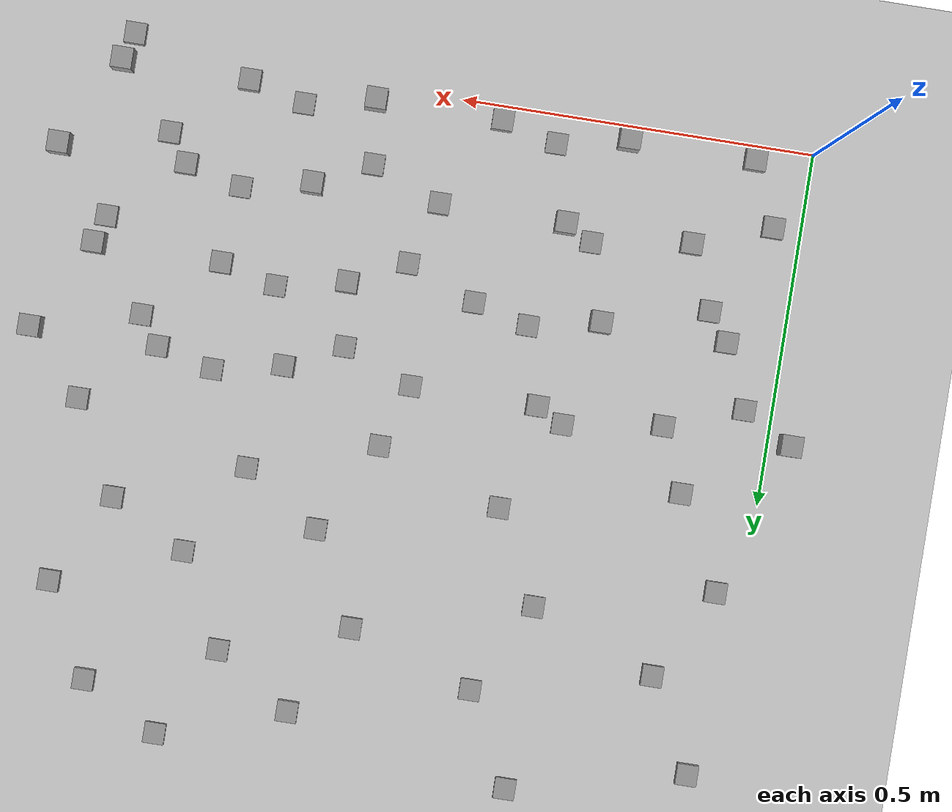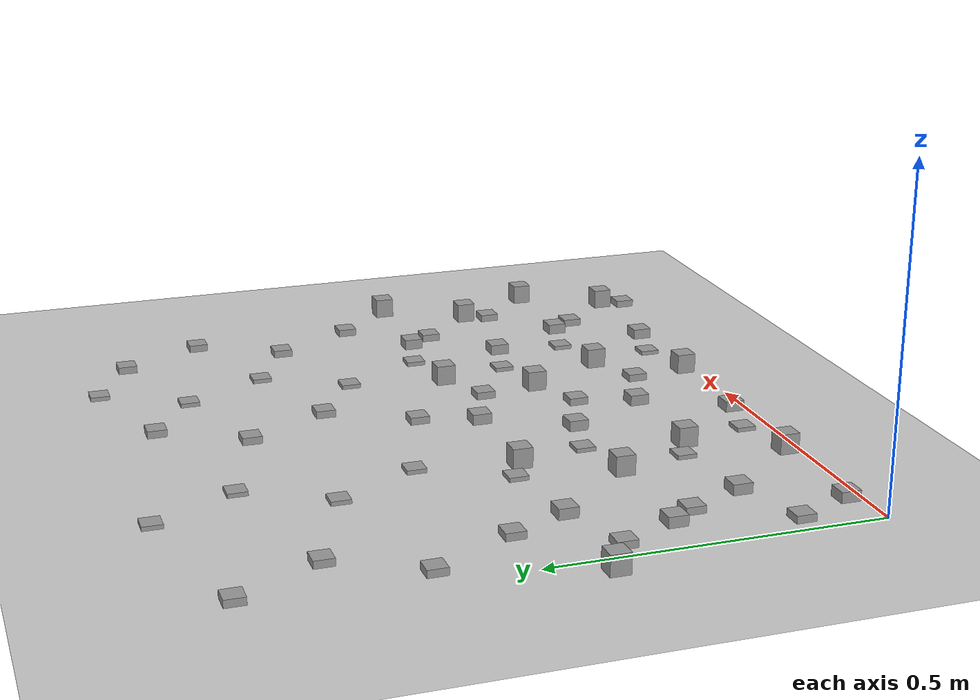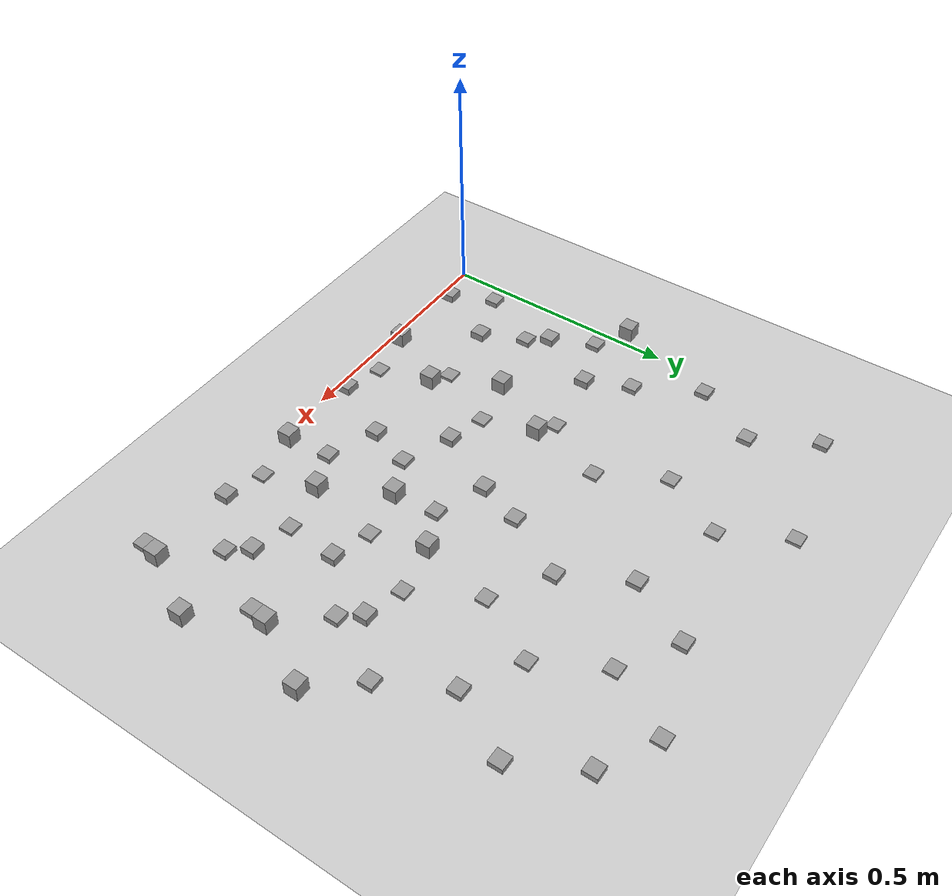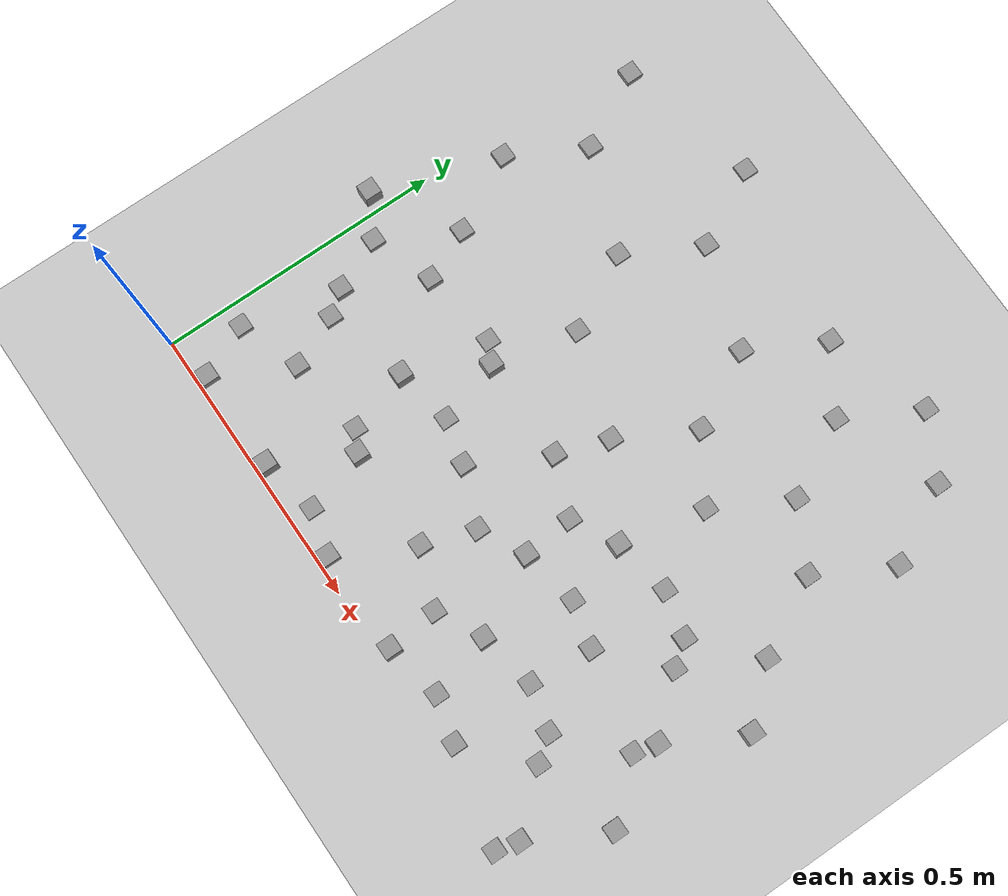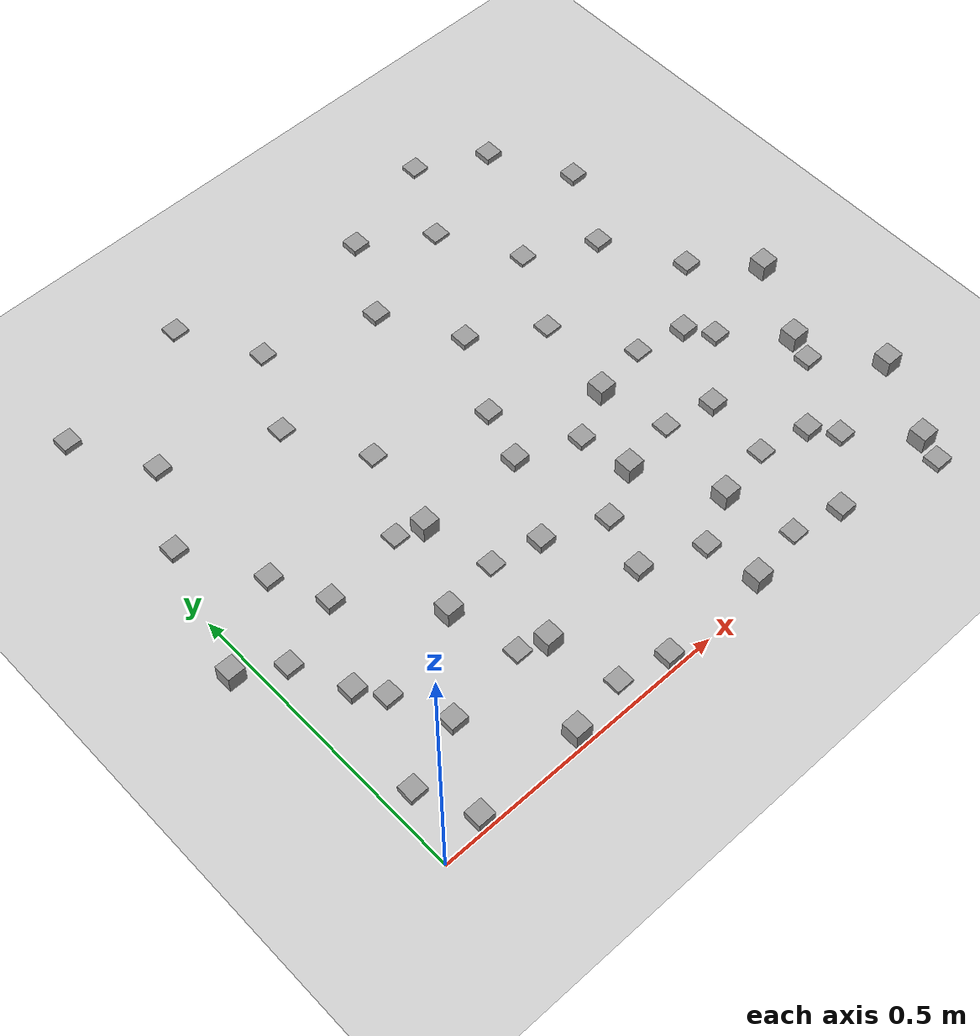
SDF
<sdf version="1.5">
 <world name="default">
  <model name="unit_box_47">
   <pose>-0.0299999999999998 0.41 0 0 0 0</pose>
   <link name="link">
    <inertial>
     <mass>1</mass>
     <inertia><ixx>0</ixx><ixy>0</ixy><ixz>0</ixz><iyy>0</iyy><iyz>0</iyz><izz>0</izz></inertia>
    </inertial>
    <collision name="collision"><geometry><box><size>0.03 0.03 0.06</size></box></geometry></collision>
    <visual name="visual">
     <geometry><box><size>0.03 0.03 0.06</size></box></geometry>
     <material>
      <script><name>Gazebo/Grey</name><uri>file://media/materials/scripts/gazebo.material</uri></script>
     </material>
    </visual>
   </link>
  </model>
  <model name="unit_box_52">
   <pose>0.0800000000000002 0.02 0 0 0 0</pose>
   <link name="link">
    <inertial>
     <mass>1</mass>
     <inertia><ixx>0</ixx><ixy>0</ixy><ixz>0</ixz><iyy>0</iyy><iyz>0</iyz><izz>0</izz></inertia>
    </inertial>
    <collision name="collision"><geometry><box><size>0.03 0.03 0.03</size></box></geometry></collision>
    <visual name="visual">
     <geometry><box><size>0.03 0.03 0.03</size></box></geometry>
     <material>
      <script><name>Gazebo/Grey</name><uri>file://media/materials/scripts/gazebo.material</uri></script>
     </material>
    </visual>
   </link>
  </model>
  <model name="unit_box_53">
   <pose>0.15 0.15 0 0 0 0</pose>
   <link name="link">
    <inertial>
     <mass>1</mass>
     <inertia><ixx>0</ixx><ixy>0</ixy><ixz>0</ixz><iyy>0</iyy><iyz>0</iyz><izz>0</izz></inertia>
    </inertial>
    <collision name="collision"><geometry><box><size>0.03 0.03 0.03</size></box></geometry></collision>
    <visual name="visual">
     <geometry><box><size>0.03 0.03 0.03</size></box></geometry>
     <material>
      <script><name>Gazebo/Grey</name><uri>file://media/materials/scripts/gazebo.material</uri></script>
     </material>
    </visual>
   </link>
  </model>
  <model name="unit_box_54">
   <pose>0.0800000000000002 0.28 0 0 0 0</pose>
   <link name="link">
    <inertial>
     <mass>1</mass>
     <inertia><ixx>0</ixx><ixy>0</ixy><ixz>0</ixz><iyy>0</iyy><iyz>0</iyz><izz>0</izz></inertia>
    </inertial>
    <collision name="collision"><geometry><box><size>0.03 0.03 0.03</size></box></geometry></collision>
    <visual name="visual">
     <geometry><box><size>0.03 0.03 0.03</size></box></geometry>
     <material>
      <script><name>Gazebo/Grey</name><uri>file://media/materials/scripts/gazebo.material</uri></script>
     </material>
    </visual>
   </link>
  </model>
  <model name="unit_box_55">
   <pose>0.15 0.41 0 0 0 0</pose>
   <link name="link">
    <inertial>
     <mass>1</mass>
     <inertia><ixx>0</ixx><ixy>0</ixy><ixz>0</ixz><iyy>0</iyy><iyz>0</iyz><izz>0</izz></inertia>
    </inertial>
    <collision name="collision"><geometry><box><size>0.03 0.03 0.03</size></box></geometry></collision>
    <visual name="visual">
     <geometry><box><size>0.03 0.03 0.03</size></box></geometry>
     <material>
      <script><name>Gazebo/Grey</name><uri>file://media/materials/scripts/gazebo.material</uri></script>
     </material>
    </visual>
   </link>
  </model>
  <model name="unit_box_60">
   <pose>0.26 0.02 0 0 0 0</pose>
   <link name="link">
    <inertial>
     <mass>1</mass>
     <inertia><ixx>0</ixx><ixy>0</ixy><ixz>0</ixz><iyy>0</iyy><iyz>0</iyz><izz>0</izz></inertia>
    </inertial>
    <collision name="collision"><geometry><box><size>0.03 0.03 0.06</size></box></geometry></collision>
    <visual name="visual">
     <geometry><box><size>0.03 0.03 0.06</size></box></geometry>
     <material>
      <script><name>Gazebo/Grey</name><uri>file://media/materials/scripts/gazebo.material</uri></script>
     </material>
    </visual>
   </link>
  </model>
  <model name="unit_box_61">
   <pose>0.33 0.15 0 0 0 0</pose>
   <link name="link">
    <inertial>
     <mass>1</mass>
     <inertia><ixx>0</ixx><ixy>0</ixy><ixz>0</ixz><iyy>0</iyy><iyz>0</iyz><izz>0</izz></inertia>
    </inertial>
    <collision name="collision"><geometry><box><size>0.03 0.03 0.06</size></box></geometry></collision>
    <visual name="visual">
     <geometry><box><size>0.03 0.03 0.06</size></box></geometry>
     <material>
      <script><name>Gazebo/Grey</name><uri>file://media/materials/scripts/gazebo.material</uri></script>
     </material>
    </visual>
   </link>
  </model>
  <model name="unit_box_62">
   <pose>0.26 0.28 0 0 0 0</pose>
   <link name="link">
    <inertial>
     <mass>1</mass>
     <inertia><ixx>0</ixx><ixy>0</ixy><ixz>0</ixz><iyy>0</iyy><iyz>0</iyz><izz>0</izz></inertia>
    </inertial>
    <collision name="collision"><geometry><box><size>0.03 0.03 0.06</size></box></geometry></collision>
    <visual name="visual">
     <geometry><box><size>0.03 0.03 0.06</size></box></geometry>
     <material>
      <script><name>Gazebo/Grey</name><uri>file://media/materials/scripts/gazebo.material</uri></script>
     </material>
    </visual>
   </link>
  </model>
  <model name="unit_box_63">
   <pose>0.33 0.41 0 0 0 0</pose>
   <link name="link">
    <inertial>
     <mass>1</mass>
     <inertia><ixx>0</ixx><ixy>0</ixy><ixz>0</ixz><iyy>0</iyy><iyz>0</iyz><izz>0</izz></inertia>
    </inertial>
    <collision name="collision"><geometry><box><size>0.03 0.03 0.06</size></box></geometry></collision>
    <visual name="visual">
     <geometry><box><size>0.03 0.03 0.06</size></box></geometry>
     <material>
      <script><name>Gazebo/Grey</name><uri>file://media/materials/scripts/gazebo.material</uri></script>
     </material>
    </visual>
   </link>
  </model>
  <model name="unit_box_68">
   <pose>0.44 0.02 0 0 0 0</pose>
   <link name="link">
    <inertial>
     <mass>1</mass>
     <inertia><ixx>0</ixx><ixy>0</ixy><ixz>0</ixz><iyy>0</iyy><iyz>0</iyz><izz>0</izz></inertia>
    </inertial>
    <collision name="collision"><geometry><box><size>0.03 0.03 0.03</size></box></geometry></collision>
    <visual name="visual">
     <geometry><box><size>0.03 0.03 0.03</size></box></geometry>
     <material>
      <script><name>Gazebo/Grey</name><uri>file://media/materials/scripts/gazebo.material</uri></script>
     </material>
    </visual>
   </link>
  </model>
  <model name="unit_box_69">
   <pose>0.51 0.15 0 0 0 0</pose>
   <link name="link">
    <inertial>
     <mass>1</mass>
     <inertia><ixx>0</ixx><ixy>0</ixy><ixz>0</ixz><iyy>0</iyy><iyz>0</iyz><izz>0</izz></inertia>
    </inertial>
    <collision name="collision"><geometry><box><size>0.03 0.03 0.03</size></box></geometry></collision>
    <visual name="visual">
     <geometry><box><size>0.03 0.03 0.03</size></box></geometry>
     <material>
      <script><name>Gazebo/Grey</name><uri>file://media/materials/scripts/gazebo.material</uri></script>
     </material>
    </visual>
   </link>
  </model>
  <model name="unit_box_70">
   <pose>0.44 0.28 0 0 0 0</pose>
   <link name="link">
    <inertial>
     <mass>1</mass>
     <inertia><ixx>0</ixx><ixy>0</ixy><ixz>0</ixz><iyy>0</iyy><iyz>0</iyz><izz>0</izz></inertia>
    </inertial>
    <collision name="collision"><geometry><box><size>0.03 0.03 0.03</size></box></geometry></collision>
    <visual name="visual">
     <geometry><box><size>0.03 0.03 0.03</size></box></geometry>
     <material>
      <script><name>Gazebo/Grey</name><uri>file://media/materials/scripts/gazebo.material</uri></script>
     </material>
    </visual>
   </link>
  </model>
  <model name="unit_box_71">
   <pose>0.51 0.41 0 0 0 0</pose>
   <link name="link">
    <inertial>
     <mass>1</mass>
     <inertia><ixx>0</ixx><ixy>0</ixy><ixz>0</ixz><iyy>0</iyy><iyz>0</iyz><izz>0</izz></inertia>
    </inertial>
    <collision name="collision"><geometry><box><size>0.03 0.03 0.03</size></box></geometry></collision>
    <visual name="visual">
     <geometry><box><size>0.03 0.03 0.03</size></box></geometry>
     <material>
      <script><name>Gazebo/Grey</name><uri>file://media/materials/scripts/gazebo.material</uri></script>
     </material>
    </visual>
   </link>
  </model>
  <model name="unit_box_76">
   <pose>0.62 0.02 0 0 0 0</pose>
   <link name="link">
    <inertial>
     <mass>1</mass>
     <inertia><ixx>0</ixx><ixy>0</ixy><ixz>0</ixz><iyy>0</iyy><iyz>0</iyz><izz>0</izz></inertia>
    </inertial>
    <collision name="collision"><geometry><box><size>0.03 0.03 0.06</size></box></geometry></collision>
    <visual name="visual">
     <geometry><box><size>0.03 0.03 0.06</size></box></geometry>
     <material>
      <script><name>Gazebo/Grey</name><uri>file://media/materials/scripts/gazebo.material</uri></script>
     </material>
    </visual>
   </link>
  </model>
  <model name="unit_box_77">
   <pose>0.69 0.15 0 0 0 0</pose>
   <link name="link">
    <inertial>
     <mass>1</mass>
     <inertia><ixx>0</ixx><ixy>0</ixy><ixz>0</ixz><iyy>0</iyy><iyz>0</iyz><izz>0</izz></inertia>
    </inertial>
    <collision name="collision"><geometry><box><size>0.03 0.03 0.06</size></box></geometry></collision>
    <visual name="visual">
     <geometry><box><size>0.03 0.03 0.06</size></box></geometry>
     <material>
      <script><name>Gazebo/Grey</name><uri>file://media/materials/scripts/gazebo.material</uri></script>
     </material>
    </visual>
   </link>
  </model>
  <model name="unit_box_78">
   <pose>0.62 0.28 0 0 0 0</pose>
   <link name="link">
    <inertial>
     <mass>1</mass>
     <inertia><ixx>0</ixx><ixy>0</ixy><ixz>0</ixz><iyy>0</iyy><iyz>0</iyz><izz>0</izz></inertia>
    </inertial>
    <collision name="collision"><geometry><box><size>0.03 0.03 0.06</size></box></geometry></collision>
    <visual name="visual">
     <geometry><box><size>0.03 0.03 0.06</size></box></geometry>
     <material>
      <script><name>Gazebo/Grey</name><uri>file://media/materials/scripts/gazebo.material</uri></script>
     </material>
    </visual>
   </link>
  </model>
  <model name="unit_box_79">
   <pose>0.69 0.41 0 0 0 0</pose>
   <link name="link">
    <inertial>
     <mass>1</mass>
     <inertia><ixx>0</ixx><ixy>0</ixy><ixz>0</ixz><iyy>0</iyy><iyz>0</iyz><izz>0</izz></inertia>
    </inertial>
    <collision name="collision"><geometry><box><size>0.03 0.03 0.06</size></box></geometry></collision>
    <visual name="visual">
     <geometry><box><size>0.03 0.03 0.06</size></box></geometry>
     <material>
      <script><name>Gazebo/Grey</name><uri>file://media/materials/scripts/gazebo.material</uri></script>
     </material>
    </visual>
   </link>
  </model>
  <model name="unit_box_84">
   <pose>0.8 0.02 0 0 0 0</pose>
   <link name="link">
    <inertial>
     <mass>1</mass>
     <inertia><ixx>0</ixx><ixy>0</ixy><ixz>0</ixz><iyy>0</iyy><iyz>0</iyz><izz>0</izz></inertia>
    </inertial>
    <collision name="collision"><geometry><box><size>0.03 0.03 0.03</size></box></geometry></collision>
    <visual name="visual">
     <geometry><box><size>0.03 0.03 0.03</size></box></geometry>
     <material>
      <script><name>Gazebo/Grey</name><uri>file://media/materials/scripts/gazebo.material</uri></script>
     </material>
    </visual>
   </link>
  </model>
  <model name="unit_box_85">
   <pose>0.87 0.15 0 0 0 0</pose>
   <link name="link">
    <inertial>
     <mass>1</mass>
     <inertia><ixx>0</ixx><ixy>0</ixy><ixz>0</ixz><iyy>0</iyy><iyz>0</iyz><izz>0</izz></inertia>
    </inertial>
    <collision name="collision"><geometry><box><size>0.03 0.03 0.03</size></box></geometry></collision>
    <visual name="visual">
     <geometry><box><size>0.03 0.03 0.03</size></box></geometry>
     <material>
      <script><name>Gazebo/Grey</name><uri>file://media/materials/scripts/gazebo.material</uri></script>
     </material>
    </visual>
   </link>
  </model>
  <model name="unit_box_86">
   <pose>0.8 0.28 0 0 0 0</pose>
   <link name="link">
    <inertial>
     <mass>1</mass>
     <inertia><ixx>0</ixx><ixy>0</ixy><ixz>0</ixz><iyy>0</iyy><iyz>0</iyz><izz>0</izz></inertia>
    </inertial>
    <collision name="collision"><geometry><box><size>0.03 0.03 0.03</size></box></geometry></collision>
    <visual name="visual">
     <geometry><box><size>0.03 0.03 0.03</size></box></geometry>
     <material>
      <script><name>Gazebo/Grey</name><uri>file://media/materials/scripts/gazebo.material</uri></script>
     </material>
    </visual>
   </link>
  </model>
  <model name="unit_box_87">
   <pose>0.87 0.41 0 0 0 0</pose>
   <link name="link">
    <inertial>
     <mass>1</mass>
     <inertia><ixx>0</ixx><ixy>0</ixy><ixz>0</ixz><iyy>0</iyy><iyz>0</iyz><izz>0</izz></inertia>
    </inertial>
    <collision name="collision"><geometry><box><size>0.03 0.03 0.03</size></box></geometry></collision>
    <visual name="visual">
     <geometry><box><size>0.03 0.03 0.03</size></box></geometry>
     <material>
      <script><name>Gazebo/Grey</name><uri>file://media/materials/scripts/gazebo.material</uri></script>
     </material>
    </visual>
   </link>
  </model>
  <model name="unit_box_92">
   <pose>0.98 0.02 0 0 0 0</pose>
   <link name="link">
    <inertial>
     <mass>1</mass>
     <inertia><ixx>0</ixx><ixy>0</ixy><ixz>0</ixz><iyy>0</iyy><iyz>0</iyz><izz>0</izz></inertia>
    </inertial>
    <collision name="collision"><geometry><box><size>0.03 0.03 0.06</size></box></geometry></collision>
    <visual name="visual">
     <geometry><box><size>0.03 0.03 0.06</size></box></geometry>
     <material>
      <script><name>Gazebo/Grey</name><uri>file://media/materials/scripts/gazebo.material</uri></script>
     </material>
    </visual>
   </link>
  </model>
  <model name="unit_box_93">
   <pose>1.05 0.15 0 0 0 0</pose>
   <link name="link">
    <inertial>
     <mass>1</mass>
     <inertia><ixx>0</ixx><ixy>0</ixy><ixz>0</ixz><iyy>0</iyy><iyz>0</iyz><izz>0</izz></inertia>
    </inertial>
    <collision name="collision"><geometry><box><size>0.03 0.03 0.06</size></box></geometry></collision>
    <visual name="visual">
     <geometry><box><size>0.03 0.03 0.06</size></box></geometry>
     <material>
      <script><name>Gazebo/Grey</name><uri>file://media/materials/scripts/gazebo.material</uri></script>
     </material>
    </visual>
   </link>
  </model>
  <model name="unit_box_94">
   <pose>0.98 0.28 0 0 0 0</pose>
   <link name="link">
    <inertial>
     <mass>1</mass>
     <inertia><ixx>0</ixx><ixy>0</ixy><ixz>0</ixz><iyy>0</iyy><iyz>0</iyz><izz>0</izz></inertia>
    </inertial>
    <collision name="collision"><geometry><box><size>0.03 0.03 0.06</size></box></geometry></collision>
    <visual name="visual">
     <geometry><box><size>0.03 0.03 0.06</size></box></geometry>
     <material>
      <script><name>Gazebo/Grey</name><uri>file://media/materials/scripts/gazebo.material</uri></script>
     </material>
    </visual>
   </link>
  </model>
  <model name="unit_box_95">
   <pose>1.05 0.41 0 0 0 0</pose>
   <link name="link">
    <inertial>
     <mass>1</mass>
     <inertia><ixx>0</ixx><ixy>0</ixy><ixz>0</ixz><iyy>0</iyy><iyz>0</iyz><izz>0</izz></inertia>
    </inertial>
    <collision name="collision"><geometry><box><size>0.03 0.03 0.06</size></box></geometry></collision>
    <visual name="visual">
     <geometry><box><size>0.03 0.03 0.06</size></box></geometry>
     <material>
      <script><name>Gazebo/Grey</name><uri>file://media/materials/scripts/gazebo.material</uri></script>
     </material>
    </visual>
   </link>
  </model>
  <model name="unit_box_86">
   <pose>0.0400000000000001 0.11 0 0 0 0</pose>
   <link name="link">
    <inertial>
     <mass>1</mass>
     <inertia><ixx>0</ixx><ixy>0</ixy><ixz>0</ixz><iyy>0</iyy><iyz>0</iyz><izz>0</izz></inertia>
    </inertial>
    <collision name="collision"><geometry><box><size>0.03 0.03 0.02</size></box></geometry></collision>
    <visual name="visual">
     <geometry><box><size>0.03 0.03 0.02</size></box></geometry>
     <material>
      <script><name>Gazebo/Grey</name><uri>file://media/materials/scripts/gazebo.material</uri></script>
     </material>
    </visual>
   </link>
  </model>
  <model name="unit_box_87">
   <pose>0.11 0.24 0 0 0 0</pose>
   <link name="link">
    <inertial>
     <mass>1</mass>
     <inertia><ixx>0</ixx><ixy>0</ixy><ixz>0</ixz><iyy>0</iyy><iyz>0</iyz><izz>0</izz></inertia>
    </inertial>
    <collision name="collision"><geometry><box><size>0.03 0.03 0.02</size></box></geometry></collision>
    <visual name="visual">
     <geometry><box><size>0.03 0.03 0.02</size></box></geometry>
     <material>
      <script><name>Gazebo/Grey</name><uri>file://media/materials/scripts/gazebo.material</uri></script>
     </material>
    </visual>
   </link>
  </model>
  <model name="unit_box_88">
   <pose>0.0400000000000001 0.37 0 0 0 0</pose>
   <link name="link">
    <inertial>
     <mass>1</mass>
     <inertia><ixx>0</ixx><ixy>0</ixy><ixz>0</ixz><iyy>0</iyy><iyz>0</iyz><izz>0</izz></inertia>
    </inertial>
    <collision name="collision"><geometry><box><size>0.03 0.03 0.02</size></box></geometry></collision>
    <visual name="visual">
     <geometry><box><size>0.03 0.03 0.02</size></box></geometry>
     <material>
      <script><name>Gazebo/Grey</name><uri>file://media/materials/scripts/gazebo.material</uri></script>
     </material>
    </visual>
   </link>
  </model>
  <model name="unit_box_89">
   <pose>0.11 0.5 0 0 0 0</pose>
   <link name="link">
    <inertial>
     <mass>1</mass>
     <inertia><ixx>0</ixx><ixy>0</ixy><ixz>0</ixz><iyy>0</iyy><iyz>0</iyz><izz>0</izz></inertia>
    </inertial>
    <collision name="collision"><geometry><box><size>0.03 0.03 0.02</size></box></geometry></collision>
    <visual name="visual">
     <geometry><box><size>0.03 0.03 0.02</size></box></geometry>
     <material>
      <script><name>Gazebo/Grey</name><uri>file://media/materials/scripts/gazebo.material</uri></script>
     </material>
    </visual>
   </link>
  </model>
  <model name="unit_box_90">
   <pose>0.0400000000000001 0.63 0 0 0 0</pose>
   <link name="link">
    <inertial>
     <mass>1</mass>
     <inertia><ixx>0</ixx><ixy>0</ixy><ixz>0</ixz><iyy>0</iyy><iyz>0</iyz><izz>0</izz></inertia>
    </inertial>
    <collision name="collision"><geometry><box><size>0.03 0.03 0.02</size></box></geometry></collision>
    <visual name="visual">
     <geometry><box><size>0.03 0.03 0.02</size></box></geometry>
     <material>
      <script><name>Gazebo/Grey</name><uri>file://media/materials/scripts/gazebo.material</uri></script>
     </material>
    </visual>
   </link>
  </model>
  <model name="unit_box_91">
   <pose>0.11 0.76 0 0 0 0</pose>
   <link name="link">
    <inertial>
     <mass>1</mass>
     <inertia><ixx>0</ixx><ixy>0</ixy><ixz>0</ixz><iyy>0</iyy><iyz>0</iyz><izz>0</izz></inertia>
    </inertial>
    <collision name="collision"><geometry><box><size>0.03 0.03 0.02</size></box></geometry></collision>
    <visual name="visual">
     <geometry><box><size>0.03 0.03 0.02</size></box></geometry>
     <material>
      <script><name>Gazebo/Grey</name><uri>file://media/materials/scripts/gazebo.material</uri></script>
     </material>
    </visual>
   </link>
  </model>
  <model name="unit_box_92">
   <pose>0.0400000000000001 0.89 0 0 0 0</pose>
   <link name="link">
    <inertial>
     <mass>1</mass>
     <inertia><ixx>0</ixx><ixy>0</ixy><ixz>0</ixz><iyy>0</iyy><iyz>0</iyz><izz>0</izz></inertia>
    </inertial>
    <collision name="collision"><geometry><box><size>0.03 0.03 0.02</size></box></geometry></collision>
    <visual name="visual">
     <geometry><box><size>0.03 0.03 0.02</size></box></geometry>
     <material>
      <script><name>Gazebo/Grey</name><uri>file://media/materials/scripts/gazebo.material</uri></script>
     </material>
    </visual>
   </link>
  </model>
  <model name="unit_box_101">
   <pose>0.36 0.0400000000000001 0 0 0 0</pose>
   <link name="link">
    <inertial>
     <mass>1</mass>
     <inertia><ixx>0</ixx><ixy>0</ixy><ixz>0</ixz><iyy>0</iyy><iyz>0</iyz><izz>0</izz></inertia>
    </inertial>
    <collision name="collision"><geometry><box><size>0.03 0.03 0.01</size></box></geometry></collision>
    <visual name="visual">
     <geometry><box><size>0.03 0.03 0.01</size></box></geometry>
     <material>
      <script><name>Gazebo/Grey</name><uri>file://media/materials/scripts/gazebo.material</uri></script>
     </material>
    </visual>
   </link>
  </model>
  <model name="unit_box_102">
   <pose>0.29 0.17 0 0 0 0</pose>
   <link name="link">
    <inertial>
     <mass>1</mass>
     <inertia><ixx>0</ixx><ixy>0</ixy><ixz>0</ixz><iyy>0</iyy><iyz>0</iyz><izz>0</izz></inertia>
    </inertial>
    <collision name="collision"><geometry><box><size>0.03 0.03 0.01</size></box></geometry></collision>
    <visual name="visual">
     <geometry><box><size>0.03 0.03 0.01</size></box></geometry>
     <material>
      <script><name>Gazebo/Grey</name><uri>file://media/materials/scripts/gazebo.material</uri></script>
     </material>
    </visual>
   </link>
  </model>
  <model name="unit_box_103">
   <pose>0.36 0.3 0 0 0 0</pose>
   <link name="link">
    <inertial>
     <mass>1</mass>
     <inertia><ixx>0</ixx><ixy>0</ixy><ixz>0</ixz><iyy>0</iyy><iyz>0</iyz><izz>0</izz></inertia>
    </inertial>
    <collision name="collision"><geometry><box><size>0.03 0.03 0.01</size></box></geometry></collision>
    <visual name="visual">
     <geometry><box><size>0.03 0.03 0.01</size></box></geometry>
     <material>
      <script><name>Gazebo/Grey</name><uri>file://media/materials/scripts/gazebo.material</uri></script>
     </material>
    </visual>
   </link>
  </model>
  <model name="unit_box_104">
   <pose>0.29 0.43 0 0 0 0</pose>
   <link name="link">
    <inertial>
     <mass>1</mass>
     <inertia><ixx>0</ixx><ixy>0</ixy><ixz>0</ixz><iyy>0</iyy><iyz>0</iyz><izz>0</izz></inertia>
    </inertial>
    <collision name="collision"><geometry><box><size>0.03 0.03 0.01</size></box></geometry></collision>
    <visual name="visual">
     <geometry><box><size>0.03 0.03 0.01</size></box></geometry>
     <material>
      <script><name>Gazebo/Grey</name><uri>file://media/materials/scripts/gazebo.material</uri></script>
     </material>
    </visual>
   </link>
  </model>
  <model name="unit_box_105">
   <pose>0.36 0.56 0 0 0 0</pose>
   <link name="link">
    <inertial>
     <mass>1</mass>
     <inertia><ixx>0</ixx><ixy>0</ixy><ixz>0</ixz><iyy>0</iyy><iyz>0</iyz><izz>0</izz></inertia>
    </inertial>
    <collision name="collision"><geometry><box><size>0.03 0.03 0.01</size></box></geometry></collision>
    <visual name="visual">
     <geometry><box><size>0.03 0.03 0.01</size></box></geometry>
     <material>
      <script><name>Gazebo/Grey</name><uri>file://media/materials/scripts/gazebo.material</uri></script>
     </material>
    </visual>
   </link>
  </model>
  <model name="unit_box_106">
   <pose>0.29 0.69 0 0 0 0</pose>
   <link name="link">
    <inertial>
     <mass>1</mass>
     <inertia><ixx>0</ixx><ixy>0</ixy><ixz>0</ixz><iyy>0</iyy><iyz>0</iyz><izz>0</izz></inertia>
    </inertial>
    <collision name="collision"><geometry><box><size>0.03 0.03 0.01</size></box></geometry></collision>
    <visual name="visual">
     <geometry><box><size>0.03 0.03 0.01</size></box></geometry>
     <material>
      <script><name>Gazebo/Grey</name><uri>file://media/materials/scripts/gazebo.material</uri></script>
     </material>
    </visual>
   </link>
  </model>
  <model name="unit_box_107">
   <pose>0.36 0.82 0 0 0 0</pose>
   <link name="link">
    <inertial>
     <mass>1</mass>
     <inertia><ixx>0</ixx><ixy>0</ixy><ixz>0</ixz><iyy>0</iyy><iyz>0</iyz><izz>0</izz></inertia>
    </inertial>
    <collision name="collision"><geometry><box><size>0.03 0.03 0.01</size></box></geometry></collision>
    <visual name="visual">
     <geometry><box><size>0.03 0.03 0.01</size></box></geometry>
     <material>
      <script><name>Gazebo/Grey</name><uri>file://media/materials/scripts/gazebo.material</uri></script>
     </material>
    </visual>
   </link>
  </model>
  <model name="unit_box_108">
   <pose>0.29 0.95 0 0 0 0</pose>
   <link name="link">
    <inertial>
     <mass>1</mass>
     <inertia><ixx>0</ixx><ixy>0</ixy><ixz>0</ixz><iyy>0</iyy><iyz>0</iyz><izz>0</izz></inertia>
    </inertial>
    <collision name="collision"><geometry><box><size>0.03 0.03 0.01</size></box></geometry></collision>
    <visual name="visual">
     <geometry><box><size>0.03 0.03 0.01</size></box></geometry>
     <material>
      <script><name>Gazebo/Grey</name><uri>file://media/materials/scripts/gazebo.material</uri></script>
     </material>
    </visual>
   </link>
  </model>
  <model name="unit_box_117">
   <pose>0.61 0.11 0 0 0 0</pose>
   <link name="link">
    <inertial>
     <mass>1</mass>
     <inertia><ixx>0</ixx><ixy>0</ixy><ixz>0</ixz><iyy>0</iyy><iyz>0</iyz><izz>0</izz></inertia>
    </inertial>
    <collision name="collision"><geometry><box><size>0.03 0.03 0.02</size></box></geometry></collision>
    <visual name="visual">
     <geometry><box><size>0.03 0.03 0.02</size></box></geometry>
     <material>
      <script><name>Gazebo/Grey</name><uri>file://media/materials/scripts/gazebo.material</uri></script>
     </material>
    </visual>
   </link>
  </model>
  <model name="unit_box_118">
   <pose>0.54 0.24 0 0 0 0</pose>
   <link name="link">
    <inertial>
     <mass>1</mass>
     <inertia><ixx>0</ixx><ixy>0</ixy><ixz>0</ixz><iyy>0</iyy><iyz>0</iyz><izz>0</izz></inertia>
    </inertial>
    <collision name="collision"><geometry><box><size>0.03 0.03 0.02</size></box></geometry></collision>
    <visual name="visual">
     <geometry><box><size>0.03 0.03 0.02</size></box></geometry>
     <material>
      <script><name>Gazebo/Grey</name><uri>file://media/materials/scripts/gazebo.material</uri></script>
     </material>
    </visual>
   </link>
  </model>
  <model name="unit_box_119">
   <pose>0.61 0.37 0 0 0 0</pose>
   <link name="link">
    <inertial>
     <mass>1</mass>
     <inertia><ixx>0</ixx><ixy>0</ixy><ixz>0</ixz><iyy>0</iyy><iyz>0</iyz><izz>0</izz></inertia>
    </inertial>
    <collision name="collision"><geometry><box><size>0.03 0.03 0.02</size></box></geometry></collision>
    <visual name="visual">
     <geometry><box><size>0.03 0.03 0.02</size></box></geometry>
     <material>
      <script><name>Gazebo/Grey</name><uri>file://media/materials/scripts/gazebo.material</uri></script>
     </material>
    </visual>
   </link>
  </model>
  <model name="unit_box_120">
   <pose>0.54 0.5 0 0 0 0</pose>
   <link name="link">
    <inertial>
     <mass>1</mass>
     <inertia><ixx>0</ixx><ixy>0</ixy><ixz>0</ixz><iyy>0</iyy><iyz>0</iyz><izz>0</izz></inertia>
    </inertial>
    <collision name="collision"><geometry><box><size>0.03 0.03 0.02</size></box></geometry></collision>
    <visual name="visual">
     <geometry><box><size>0.03 0.03 0.02</size></box></geometry>
     <material>
      <script><name>Gazebo/Grey</name><uri>file://media/materials/scripts/gazebo.material</uri></script>
     </material>
    </visual>
   </link>
  </model>
  <model name="unit_box_121">
   <pose>0.61 0.63 0 0 0 0</pose>
   <link name="link">
    <inertial>
     <mass>1</mass>
     <inertia><ixx>0</ixx><ixy>0</ixy><ixz>0</ixz><iyy>0</iyy><iyz>0</iyz><izz>0</izz></inertia>
    </inertial>
    <collision name="collision"><geometry><box><size>0.03 0.03 0.02</size></box></geometry></collision>
    <visual name="visual">
     <geometry><box><size>0.03 0.03 0.02</size></box></geometry>
     <material>
      <script><name>Gazebo/Grey</name><uri>file://media/materials/scripts/gazebo.material</uri></script>
     </material>
    </visual>
   </link>
  </model>
  <model name="unit_box_122">
   <pose>0.54 0.76 0 0 0 0</pose>
   <link name="link">
    <inertial>
     <mass>1</mass>
     <inertia><ixx>0</ixx><ixy>0</ixy><ixz>0</ixz><iyy>0</iyy><iyz>0</iyz><izz>0</izz></inertia>
    </inertial>
    <collision name="collision"><geometry><box><size>0.03 0.03 0.02</size></box></geometry></collision>
    <visual name="visual">
     <geometry><box><size>0.03 0.03 0.02</size></box></geometry>
     <material>
      <script><name>Gazebo/Grey</name><uri>file://media/materials/scripts/gazebo.material</uri></script>
     </material>
    </visual>
   </link>
  </model>
  <model name="unit_box_123">
   <pose>0.61 0.89 0 0 0 0</pose>
   <link name="link">
    <inertial>
     <mass>1</mass>
     <inertia><ixx>0</ixx><ixy>0</ixy><ixz>0</ixz><iyy>0</iyy><iyz>0</iyz><izz>0</izz></inertia>
    </inertial>
    <collision name="collision"><geometry><box><size>0.03 0.03 0.02</size></box></geometry></collision>
    <visual name="visual">
     <geometry><box><size>0.03 0.03 0.02</size></box></geometry>
     <material>
      <script><name>Gazebo/Grey</name><uri>file://media/materials/scripts/gazebo.material</uri></script>
     </material>
    </visual>
   </link>
  </model>
  <model name="unit_box_132">
   <pose>0.72 0.0400000000000001 0 0 0 0</pose>
   <link name="link">
    <inertial>
     <mass>1</mass>
     <inertia><ixx>0</ixx><ixy>0</ixy><ixz>0</ixz><iyy>0</iyy><iyz>0</iyz><izz>0</izz></inertia>
    </inertial>
    <collision name="collision"><geometry><box><size>0.03 0.03 0.01</size></box></geometry></collision>
    <visual name="visual">
     <geometry><box><size>0.03 0.03 0.01</size></box></geometry>
     <material>
      <script><name>Gazebo/Grey</name><uri>file://media/materials/scripts/gazebo.material</uri></script>
     </material>
    </visual>
   </link>
  </model>
  <model name="unit_box_133">
   <pose>0.79 0.17 0 0 0 0</pose>
   <link name="link">
    <inertial>
     <mass>1</mass>
     <inertia><ixx>0</ixx><ixy>0</ixy><ixz>0</ixz><iyy>0</iyy><iyz>0</iyz><izz>0</izz></inertia>
    </inertial>
    <collision name="collision"><geometry><box><size>0.03 0.03 0.01</size></box></geometry></collision>
    <visual name="visual">
     <geometry><box><size>0.03 0.03 0.01</size></box></geometry>
     <material>
      <script><name>Gazebo/Grey</name><uri>file://media/materials/scripts/gazebo.material</uri></script>
     </material>
    </visual>
   </link>
  </model>
  <model name="unit_box_134">
   <pose>0.72 0.3 0 0 0 0</pose>
   <link name="link">
    <inertial>
     <mass>1</mass>
     <inertia><ixx>0</ixx><ixy>0</ixy><ixz>0</ixz><iyy>0</iyy><iyz>0</iyz><izz>0</izz></inertia>
    </inertial>
    <collision name="collision"><geometry><box><size>0.03 0.03 0.01</size></box></geometry></collision>
    <visual name="visual">
     <geometry><box><size>0.03 0.03 0.01</size></box></geometry>
     <material>
      <script><name>Gazebo/Grey</name><uri>file://media/materials/scripts/gazebo.material</uri></script>
     </material>
    </visual>
   </link>
  </model>
  <model name="unit_box_135">
   <pose>0.79 0.43 0 0 0 0</pose>
   <link name="link">
    <inertial>
     <mass>1</mass>
     <inertia><ixx>0</ixx><ixy>0</ixy><ixz>0</ixz><iyy>0</iyy><iyz>0</iyz><izz>0</izz></inertia>
    </inertial>
    <collision name="collision"><geometry><box><size>0.03 0.03 0.01</size></box></geometry></collision>
    <visual name="visual">
     <geometry><box><size>0.03 0.03 0.01</size></box></geometry>
     <material>
      <script><name>Gazebo/Grey</name><uri>file://media/materials/scripts/gazebo.material</uri></script>
     </material>
    </visual>
   </link>
  </model>
  <model name="unit_box_136">
   <pose>0.72 0.56 0 0 0 0</pose>
   <link name="link">
    <inertial>
     <mass>1</mass>
     <inertia><ixx>0</ixx><ixy>0</ixy><ixz>0</ixz><iyy>0</iyy><iyz>0</iyz><izz>0</izz></inertia>
    </inertial>
    <collision name="collision"><geometry><box><size>0.03 0.03 0.01</size></box></geometry></collision>
    <visual name="visual">
     <geometry><box><size>0.03 0.03 0.01</size></box></geometry>
     <material>
      <script><name>Gazebo/Grey</name><uri>file://media/materials/scripts/gazebo.material</uri></script>
     </material>
    </visual>
   </link>
  </model>
  <model name="unit_box_137">
   <pose>0.79 0.69 0 0 0 0</pose>
   <link name="link">
    <inertial>
     <mass>1</mass>
     <inertia><ixx>0</ixx><ixy>0</ixy><ixz>0</ixz><iyy>0</iyy><iyz>0</iyz><izz>0</izz></inertia>
    </inertial>
    <collision name="collision"><geometry><box><size>0.03 0.03 0.01</size></box></geometry></collision>
    <visual name="visual">
     <geometry><box><size>0.03 0.03 0.01</size></box></geometry>
     <material>
      <script><name>Gazebo/Grey</name><uri>file://media/materials/scripts/gazebo.material</uri></script>
     </material>
    </visual>
   </link>
  </model>
  <model name="unit_box_138">
   <pose>0.72 0.82 0 0 0 0</pose>
   <link name="link">
    <inertial>
     <mass>1</mass>
     <inertia><ixx>0</ixx><ixy>0</ixy><ixz>0</ixz><iyy>0</iyy><iyz>0</iyz><izz>0</izz></inertia>
    </inertial>
    <collision name="collision"><geometry><box><size>0.03 0.03 0.01</size></box></geometry></collision>
    <visual name="visual">
     <geometry><box><size>0.03 0.03 0.01</size></box></geometry>
     <material>
      <script><name>Gazebo/Grey</name><uri>file://media/materials/scripts/gazebo.material</uri></script>
     </material>
    </visual>
   </link>
  </model>
  <model name="unit_box_139">
   <pose>0.79 0.95 0 0 0 0</pose>
   <link name="link">
    <inertial>
     <mass>1</mass>
     <inertia><ixx>0</ixx><ixy>0</ixy><ixz>0</ixz><iyy>0</iyy><iyz>0</iyz><izz>0</izz></inertia>
    </inertial>
    <collision name="collision"><geometry><box><size>0.03 0.03 0.01</size></box></geometry></collision>
    <visual name="visual">
     <geometry><box><size>0.03 0.03 0.01</size></box></geometry>
     <material>
      <script><name>Gazebo/Grey</name><uri>file://media/materials/scripts/gazebo.material</uri></script>
     </material>
    </visual>
   </link>
  </model>
  <model name="unit_box_147">
   <pose>0.97 -0.02 0 0 0 0</pose>
   <link name="link">
    <inertial>
     <mass>1</mass>
     <inertia><ixx>0</ixx><ixy>0</ixy><ixz>0</ixz><iyy>0</iyy><iyz>0</iyz><izz>0</izz></inertia>
    </inertial>
    <collision name="collision"><geometry><box><size>0.03 0.03 0.02</size></box></geometry></collision>
    <visual name="visual">
     <geometry><box><size>0.03 0.03 0.02</size></box></geometry>
     <material>
      <script><name>Gazebo/Grey</name><uri>file://media/materials/scripts/gazebo.material</uri></script>
     </material>
    </visual>
   </link>
  </model>
  <model name="unit_box_148">
   <pose>0.9 0.11 0 0 0 0</pose>
   <link name="link">
    <inertial>
     <mass>1</mass>
     <inertia><ixx>0</ixx><ixy>0</ixy><ixz>0</ixz><iyy>0</iyy><iyz>0</iyz><izz>0</izz></inertia>
    </inertial>
    <collision name="collision"><geometry><box><size>0.03 0.03 0.02</size></box></geometry></collision>
    <visual name="visual">
     <geometry><box><size>0.03 0.03 0.02</size></box></geometry>
     <material>
      <script><name>Gazebo/Grey</name><uri>file://media/materials/scripts/gazebo.material</uri></script>
     </material>
    </visual>
   </link>
  </model>
  <model name="unit_box_149">
   <pose>0.97 0.24 0 0 0 0</pose>
   <link name="link">
    <inertial>
     <mass>1</mass>
     <inertia><ixx>0</ixx><ixy>0</ixy><ixz>0</ixz><iyy>0</iyy><iyz>0</iyz><izz>0</izz></inertia>
    </inertial>
    <collision name="collision"><geometry><box><size>0.03 0.03 0.02</size></box></geometry></collision>
    <visual name="visual">
     <geometry><box><size>0.03 0.03 0.02</size></box></geometry>
     <material>
      <script><name>Gazebo/Grey</name><uri>file://media/materials/scripts/gazebo.material</uri></script>
     </material>
    </visual>
   </link>
  </model>
  <model name="unit_box_150">
   <pose>0.9 0.37 0 0 0 0</pose>
   <link name="link">
    <inertial>
     <mass>1</mass>
     <inertia><ixx>0</ixx><ixy>0</ixy><ixz>0</ixz><iyy>0</iyy><iyz>0</iyz><izz>0</izz></inertia>
    </inertial>
    <collision name="collision"><geometry><box><size>0.03 0.03 0.02</size></box></geometry></collision>
    <visual name="visual">
     <geometry><box><size>0.03 0.03 0.02</size></box></geometry>
     <material>
      <script><name>Gazebo/Grey</name><uri>file://media/materials/scripts/gazebo.material</uri></script>
     </material>
    </visual>
   </link>
  </model>
  <model name="unit_box_151">
   <pose>0.97 0.5 0 0 0 0</pose>
   <link name="link">
    <inertial>
     <mass>1</mass>
     <inertia><ixx>0</ixx><ixy>0</ixy><ixz>0</ixz><iyy>0</iyy><iyz>0</iyz><izz>0</izz></inertia>
    </inertial>
    <collision name="collision"><geometry><box><size>0.03 0.03 0.02</size></box></geometry></collision>
    <visual name="visual">
     <geometry><box><size>0.03 0.03 0.02</size></box></geometry>
     <material>
      <script><name>Gazebo/Grey</name><uri>file://media/materials/scripts/gazebo.material</uri></script>
     </material>
    </visual>
   </link>
  </model>
  <model name="unit_box_152">
   <pose>0.9 0.63 0 0 0 0</pose>
   <link name="link">
    <inertial>
     <mass>1</mass>
     <inertia><ixx>0</ixx><ixy>0</ixy><ixz>0</ixz><iyy>0</iyy><iyz>0</iyz><izz>0</izz></inertia>
    </inertial>
    <collision name="collision"><geometry><box><size>0.03 0.03 0.02</size></box></geometry></collision>
    <visual name="visual">
     <geometry><box><size>0.03 0.03 0.02</size></box></geometry>
     <material>
      <script><name>Gazebo/Grey</name><uri>file://media/materials/scripts/gazebo.material</uri></script>
     </material>
    </visual>
   </link>
  </model>
  <model name="unit_box_153">
   <pose>0.97 0.76 0 0 0 0</pose>
   <link name="link">
    <inertial>
     <mass>1</mass>
     <inertia><ixx>0</ixx><ixy>0</ixy><ixz>0</ixz><iyy>0</iyy><iyz>0</iyz><izz>0</izz></inertia>
    </inertial>
    <collision name="collision"><geometry><box><size>0.03 0.03 0.02</size></box></geometry></collision>
    <visual name="visual">
     <geometry><box><size>0.03 0.03 0.02</size></box></geometry>
     <material>
      <script><name>Gazebo/Grey</name><uri>file://media/materials/scripts/gazebo.material</uri></script>
     </material>
    </visual>
   </link>
  </model>
  <model name="unit_box_154">
   <pose>0.9 0.89 0 0 0 0</pose>
   <link name="link">
    <inertial>
     <mass>1</mass>
     <inertia><ixx>0</ixx><ixy>0</ixy><ixz>0</ixz><iyy>0</iyy><iyz>0</iyz><izz>0</izz></inertia>
    </inertial>
    <collision name="collision"><geometry><box><size>0.03 0.03 0.02</size></box></geometry></collision>
    <visual name="visual">
     <geometry><box><size>0.03 0.03 0.02</size></box></geometry>
     <material>
      <script><name>Gazebo/Grey</name><uri>file://media/materials/scripts/gazebo.material</uri></script>
     </material>
    </visual>
   </link>
  </model>
  <include><uri>model://sun</uri></include>
  <include><uri>model://tol_ground</uri></include>
 </world>
</sdf>
